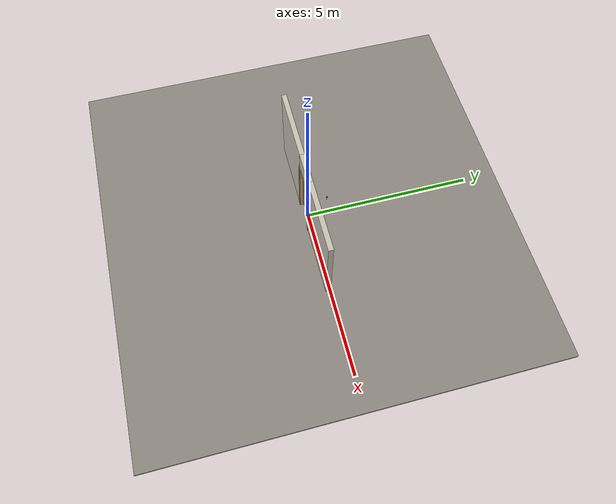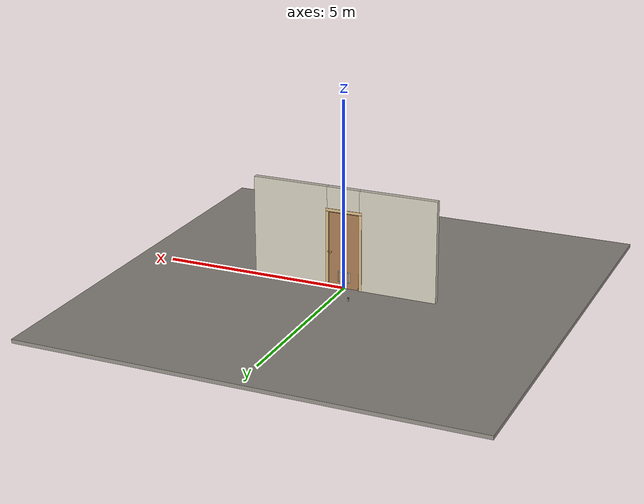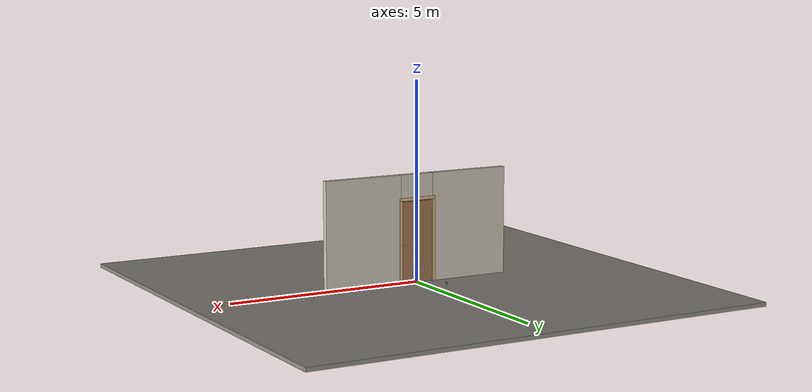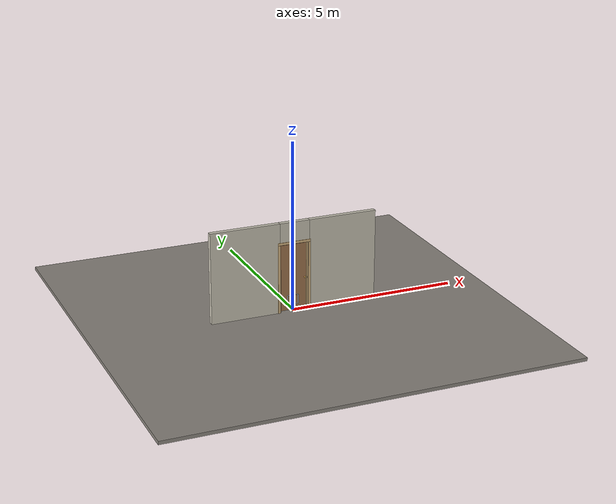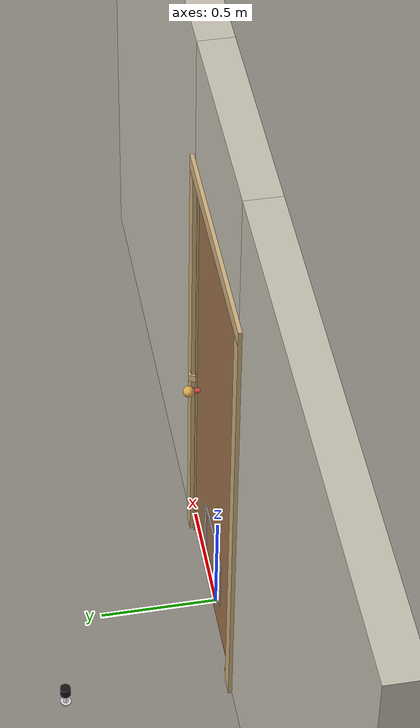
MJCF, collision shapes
<?xml version="1.0" ?>
<mujoco model="db0502_swing_single_full">
  <compiler angle="radian" meshdir="../../hardware" texturedir="../../textures" autolimits="true" inertiafromgeom="false"/>
  <option timestep="0.002" integrator="implicitfast" cone="elliptic" impratio="10" noslip_iterations="3">
    <flag multiccd="enable"/>
  </option>
  <size memory="16M"/>
  <default>
    <geom condim="4" solref="0.005 1" solimp="0.95 0.99 0.001"/>
    <joint solreflimit="0.005 1" solimplimit="0.95 0.99 0.001"/>
    <tendon solreflimit="0.005 1"/>
    <equality solref="0.002 1"/>
  </default>
  <visual>
    <headlight ambient="0.4 0.4 0.4" diffuse="0.7 0.7 0.7" specular="0.2 0.2 0.2"/>
    <quality shadowsize="4096"/>
    <map znear="0.01" zfar="60"/>
  </visual>
  <asset>
    <mesh name="hinge_c20a5829de" file="hinge_c20a5829de.obj"/>
    <mesh name="hinge_jamb_20499e6581" file="hinge_jamb_20499e6581.obj"/>
    <mesh name="knob_d1888f6f03" file="knob_d1888f6f03.obj"/>
    <material name="mat_floor" rgba="0.55 0.53 0.5 1" specular="0.2" shininess="0.15" reflectance="0"/>
    <material name="mat_wall" rgba="0.78 0.76 0.7 1" specular="0.2" shininess="0.1" reflectance="0"/>
    <material name="mat_hinge" rgba="0.55 0.56 0.58 1" specular="0.8" shininess="0.55" reflectance="0.4"/>
    <material name="mat_leaf" rgba="0.62 0.45 0.3 1" specular="0.2" shininess="0.5" reflectance="0"/>
    <material name="mat_op_brass" rgba="0.85 0.66 0.3 1" specular="0.8" shininess="0.75" reflectance="0.4"/>
    <material name="mat_trim" rgba="0.85 0.66 0.3 1" specular="0.8" shininess="0.75" reflectance="0.4"/>
    <material name="mat_bolt" rgba="0.85 0.66 0.3 1" specular="0.8" shininess="0.75" reflectance="0.4"/>
    <material name="mat_frame" rgba="0.82 0.7 0.5 1" specular="0.2" shininess="0.45" reflectance="0"/>
    <material name="mat_vent" rgba="0.8 0.81 0.83 1" specular="0.8" shininess="0.6" reflectance="0.4"/>
    <material name="mat_bumper_stop" rgba="0.08 0.08 0.08 1" specular="0.2" shininess="0.1" reflectance="0"/>
    <material name="mat_stop_base" rgba="0.9 0.9 0.92 1" specular="0.8" shininess="0.9" reflectance="0.4"/>
    <texture name="skybox" type="skybox" builtin="gradient" rgb1="0.6 0.7 0.85" rgb2="0.9 0.92 0.95" width="256" height="256"/>
  </asset>
  <worldbody>
    <light name="sun" pos="1.5 -2.5 4" dir="-0.3 0.5 -0.8" directional="true" diffuse="0.8 0.8 0.8" specular="0.3 0.3 0.3" castshadow="true"/>
    <light name="fill" pos="-1.5 2.5 3" dir="0.3 -0.5 -0.7" directional="true" diffuse="0.35 0.35 0.4" castshadow="false"/>
    <camera name="robot_view" pos="0 -2.590187 1.734312" xyaxes="1 0 0 0 0.26963 0.962964" fovy="52"/>
    <camera name="far_view" pos="0 2.494187 1.734312" xyaxes="-1 0 0 0 -0.26963 0.962964" fovy="52"/>
    <camera name="iso" pos="1.932062 -2.183438 2.141063" xyaxes="0.741536 0.670913 0 -0.242917 0.268487 0.932151" fovy="46"/>
    <camera name="detail_handle" pos="0.526 -0.864 1.245" xyaxes="0.97561 0.219512 0 -0.070934 0.315262 0.94635" fovy="38"/>
    <geom name="floor" type="box" size="6 6 0.05" pos="0 0 -0.05" material="mat_floor" group="0" contype="1" conaffinity="1" friction="0.8 0.005 0.0001" density="2400"/>
    <geom name="wall_left" type="box" size="1.0355 0.0725 1.35" pos="-1.4645 -0.048 1.35" material="mat_wall" group="0" contype="1" conaffinity="1" friction="0.6 0.005 0.0001" density="800"/>
    <geom name="wall_right" type="box" size="1.0205 0.0725 1.35" pos="1.4795 -0.048 1.35" material="mat_wall" group="0" contype="1" conaffinity="1" friction="0.6 0.005 0.0001" density="800"/>
    <geom name="wall_header" type="box" size="0.444 0.0725 0.303" pos="0.015 -0.048 2.397" material="mat_wall" group="0" contype="1" conaffinity="1" friction="0.6 0.005 0.0001" density="800"/>
    <geom name="hinge_0_jamb" type="mesh" mesh="hinge_jamb_20499e6581" pos="-0.407 0.0245 0.259" quat="0 1 0 0" material="mat_hinge" group="1" contype="0" conaffinity="0" density="7850"/>
    <geom name="hinge_1_jamb" type="mesh" mesh="hinge_jamb_20499e6581" pos="-0.407 0.0245 1.0198" quat="0 1 0 0" material="mat_hinge" group="1" contype="0" conaffinity="0" density="7850"/>
    <geom name="hinge_2_jamb" type="mesh" mesh="hinge_jamb_20499e6581" pos="-0.407 0.0245 1.8506" quat="0 1 0 0" material="mat_hinge" group="1" contype="0" conaffinity="0" density="7850"/>
    <geom name="jamb_hinge" type="box" size="0.0095 0.0725 1.0225" pos="-0.4195 -0.048 1.0225" material="mat_frame" group="0" contype="1" conaffinity="1" friction="0.6 0.005 0.0001" density="400"/>
    <geom name="strike_965_wall_n" type="box" size="0.0245 0.056325 0.0167" pos="0.4345 -0.064175 0.965" material="mat_frame" group="0" contype="1" conaffinity="1" friction="0.6 0.005 0.0001" density="400"/>
    <geom name="strike_965_wall_p" type="box" size="0.0245 0.008 0.0167" pos="0.4345 0.01585 0.965" material="mat_frame" group="0" contype="1" conaffinity="1" friction="0.6 0.005 0.0001" density="400"/>
    <geom name="strike_965_ramp" type="box" size="0.0245 0.01649 0.0167" pos="0.439136 0.028673 0.965" quat="0.977148 0 0 -0.212558" material="mat_frame" group="0" contype="1" conaffinity="1" friction="0.12 0.005 0.0001" density="400"/>
    <geom name="strike_965_back" type="box" size="0.01615 0.00785 0.0167" pos="0.44285 0 0.965" material="mat_frame" group="0" contype="1" conaffinity="1" friction="0.6 0.005 0.0001" density="400"/>
    <geom name="jamb_strike_0" type="box" size="0.0245 0.0725 0.47415" pos="0.4345 -0.048 0.47415" material="mat_frame" group="0" contype="1" conaffinity="1" friction="0.6 0.005 0.0001" density="400"/>
    <geom name="jamb_strike_1" type="box" size="0.0245 0.0725 0.53165" pos="0.4345 -0.048 1.51335" material="mat_frame" group="0" contype="1" conaffinity="1" friction="0.6 0.005 0.0001" density="400"/>
    <geom name="jamb_head" type="box" size="0.444 0.0725 0.0095" pos="0.015 -0.048 2.0545" material="mat_frame" group="0" contype="1" conaffinity="1" friction="0.6 0.005 0.0001" density="400"/>
    <geom name="head_stud" type="box" size="0.444 0.0725 0.015" pos="0.015 -0.048 2.079" material="mat_wall" group="0" contype="1" conaffinity="1" friction="0.6 0.005 0.0001" density="500"/>
    <geom name="stop_hinge" type="box" size="0.0055 0.016 1.0225" pos="-0.4045 -0.034 1.0225" material="mat_frame" group="0" contype="1" conaffinity="1" friction="0.6 0.005 0.0001" density="400"/>
    <geom name="stop_strike" type="box" size="0.0055 0.016 1.0225" pos="0.4045 -0.034 1.0225" material="mat_frame" group="0" contype="1" conaffinity="1" friction="0.6 0.005 0.0001" density="400"/>
    <geom name="stop_head" type="box" size="0.41 0.016 0.0055" pos="0 -0.034 2.0395" material="mat_frame" group="0" contype="1" conaffinity="1" friction="0.6 0.005 0.0001" density="400"/>
    <geom name="casing_l_n" type="box" size="0.035 0.008 1.032" pos="-0.459 -0.1285 1.0225" material="mat_frame" group="2" contype="0" conaffinity="0" density="400"/>
    <geom name="casing_r_n" type="box" size="0.035 0.008 1.032" pos="0.459 -0.1285 1.0225" material="mat_frame" group="2" contype="0" conaffinity="0" density="400"/>
    <geom name="casing_h_n" type="box" size="0.494 0.008 0.035" pos="0 -0.1285 2.094" material="mat_frame" group="2" contype="0" conaffinity="0" density="400"/>
    <geom name="casing_l_p" type="box" size="0.035 0.008 1.032" pos="-0.459 0.0325 1.0225" material="mat_frame" group="2" contype="0" conaffinity="0" density="400"/>
    <geom name="casing_r_p" type="box" size="0.035 0.008 1.032" pos="0.459 0.0325 1.0225" material="mat_frame" group="2" contype="0" conaffinity="0" density="400"/>
    <geom name="casing_h_p" type="box" size="0.494 0.008 0.035" pos="0 0.0325 2.094" material="mat_frame" group="2" contype="0" conaffinity="0" density="400"/>
    <geom name="door_stop_base" type="cylinder" size="0.022 0.003" pos="-0.423 0.71555 0.003" material="mat_stop_base" group="0" contype="1" conaffinity="1" friction="0.6 0.005 0.0001" density="7850"/>
    <geom name="door_stop_post" type="cylinder" size="0.012 0.0245" pos="-0.423 0.71555 0.0305" material="mat_stop_base" group="0" contype="1" conaffinity="1" friction="0.6 0.005 0.0001" density="7850"/>
    <geom name="door_stop_bumper" type="cylinder" size="0.022 0.02" pos="-0.423 0.71555 0.075" material="mat_bumper_stop" group="0" contype="1" conaffinity="1" friction="0.6 0.005 0.0001" density="1100"/>
    <site name="approach_point" pos="0 -1.5 0" quat="1 0 0 0" size="0.05" rgba="0.2 0.9 0.2 0.5" group="4"/>
    <site name="goal_point" pos="0 1.5 0" quat="1 0 0 0" size="0.05" rgba="0.2 0.9 0.2 0.5" group="4"/>
    <site name="door_plane_center" pos="0 0 1.0225" quat="1 0 0 0" size="0.02" rgba="0.2 0.9 0.2 0.5" group="4"/>
    <body name="leaf_riser" pos="-0.41 0 0">
      <inertial pos="0.003 0.0245 0.055" mass="0.174012" quat="0.707107 0 0.707107 0" diaginertia="0.000017053 0.00002732 0.00002732"/>
      <joint name="leaf_rise" type="slide" axis="0 0 1" limited="true" range="0 0.0176" damping="1" armature="0.5"/>
      <geom name="leaf_riser_marker" type="cylinder" size="0.014 0.018" pos="0.003 0.0245 0.055" material="mat_hinge" group="1" contype="0" conaffinity="0" density="7850"/>
      <body name="leaf" pos="0 0 0">
        <inertial pos="0.403958 0.000232 1.0028" mass="41.485" quat="0.49979 0.500613 0.499373 -0.500224" diaginertia="2.310537089 14.334887777 16.636340901"/>
        <joint name="leaf_hinge" type="hinge" axis="0 0 1" pos="0.003 0.0245 0" limited="true" range="0 1.570796" damping="0.210326" frictionloss="1.506289" armature="0.02"/>
        <geom name="leaf_slab" type="box" size="0.4065 0.0175 1.0108" pos="0.4095 0 1.0198" material="mat_leaf" group="0" contype="1" conaffinity="1" friction="0.4 0.005 0.0001" density="1"/>
        <geom name="hinge_0" type="mesh" mesh="hinge_c20a5829de" pos="0.003 0.0245 0.259" quat="0 1 0 0" material="mat_hinge" group="1" contype="0" conaffinity="0" density="7850"/>
        <geom name="hinge_1" type="mesh" mesh="hinge_c20a5829de" pos="0.003 0.0245 1.0198" quat="0 1 0 0" material="mat_hinge" group="1" contype="0" conaffinity="0" density="7850"/>
        <geom name="hinge_2" type="mesh" mesh="hinge_c20a5829de" pos="0.003 0.0245 1.8506" quat="0 1 0 0" material="mat_hinge" group="1" contype="0" conaffinity="0" density="7850"/>
        <geom name="leaf_latch_bolt_faceplate" type="box" size="0.0006 0.01235 0.0267" pos="0.8154 0 0.965" material="mat_bolt" group="1" contype="0" conaffinity="0" density="8500"/>
        <geom name="louver_vent_stile_n_l" type="box" size="0.012 0.002 0.137" pos="0.2475 -0.0195 0.314" material="mat_vent" group="2" contype="0" conaffinity="0" density="2700"/>
        <geom name="louver_vent_stile_n_r" type="box" size="0.012 0.002 0.137" pos="0.5715 -0.0195 0.314" material="mat_vent" group="2" contype="0" conaffinity="0" density="2700"/>
        <geom name="louver_vent_rail_n_b" type="box" size="0.15 0.002 0.012" pos="0.4095 -0.0195 0.177" material="mat_vent" group="2" contype="0" conaffinity="0" density="2700"/>
        <geom name="louver_vent_rail_n_t" type="box" size="0.15 0.002 0.012" pos="0.4095 -0.0195 0.451" material="mat_vent" group="2" contype="0" conaffinity="0" density="2700"/>
        <geom name="louver_vent_stile_p_l" type="box" size="0.012 0.002 0.137" pos="0.2475 0.0195 0.314" material="mat_vent" group="2" contype="0" conaffinity="0" density="2700"/>
        <geom name="louver_vent_stile_p_r" type="box" size="0.012 0.002 0.137" pos="0.5715 0.0195 0.314" material="mat_vent" group="2" contype="0" conaffinity="0" density="2700"/>
        <geom name="louver_vent_rail_p_b" type="box" size="0.15 0.002 0.012" pos="0.4095 0.0195 0.177" material="mat_vent" group="2" contype="0" conaffinity="0" density="2700"/>
        <geom name="louver_vent_rail_p_t" type="box" size="0.15 0.002 0.012" pos="0.4095 0.0195 0.451" material="mat_vent" group="2" contype="0" conaffinity="0" density="2700"/>
        <geom name="louver_vent_slat_0" type="box" size="0.15 0.0015 0.015" pos="0.4095 0 0.209833" quat="0.965926 -0.258819 0 0" material="mat_vent" group="2" contype="0" conaffinity="0" density="2700"/>
        <geom name="louver_vent_slat_1" type="box" size="0.15 0.0015 0.015" pos="0.4095 0 0.2515" quat="0.965926 -0.258819 0 0" material="mat_vent" group="2" contype="0" conaffinity="0" density="2700"/>
        <geom name="louver_vent_slat_2" type="box" size="0.15 0.0015 0.015" pos="0.4095 0 0.293167" quat="0.965926 -0.258819 0 0" material="mat_vent" group="2" contype="0" conaffinity="0" density="2700"/>
        <geom name="louver_vent_slat_3" type="box" size="0.15 0.0015 0.015" pos="0.4095 0 0.334833" quat="0.965926 -0.258819 0 0" material="mat_vent" group="2" contype="0" conaffinity="0" density="2700"/>
        <geom name="louver_vent_slat_4" type="box" size="0.15 0.0015 0.015" pos="0.4095 0 0.3765" quat="0.965926 -0.258819 0 0" material="mat_vent" group="2" contype="0" conaffinity="0" density="2700"/>
        <geom name="louver_vent_slat_5" type="box" size="0.15 0.0015 0.015" pos="0.4095 0 0.418167" quat="0.965926 -0.258819 0 0" material="mat_vent" group="2" contype="0" conaffinity="0" density="2700"/>
        <site name="leaf_edge_mid" pos="0.816 0 1.0108" quat="1 0 0 0" size="0.02" rgba="0.2 0.9 0.2 0.5" group="4"/>
        <body name="leaf_handle" pos="0.756 0 0.965">
          <inertial pos="0 0 0" mass="1.143961" quat="-0.5 0.5 -0.5 0.5" diaginertia="0.00031237 0.003706292 0.003706292"/>
          <joint name="leaf_handle_hinge" type="hinge" axis="0 -1 0" limited="true" range="0 0.87" damping="0.143613" frictionloss="0.038" stiffness="0.5" springref="-0.5" armature="0.01"/>
          <geom name="leaf_handle_spindle" type="cylinder" size="0.006 0.0255" pos="0 0 0" quat="0.707107 -0.707107 0 0" material="mat_op_brass" group="1" contype="0" conaffinity="0" density="7850"/>
          <geom name="leaf_handle_knob_n" type="mesh" mesh="knob_d1888f6f03" pos="0 -0.0175 0" quat="0.707107 0.707107 0 0" material="mat_op_brass" group="1" contype="0" conaffinity="0" density="3000"/>
          <geom name="leaf_handle_knob_col_n" type="sphere" size="0.0243" pos="0 -0.064 0" material="mat_op_brass" group="0" contype="1" conaffinity="1" friction="0.9 0.01 0.0001" density="3000"/>
          <geom name="leaf_handle_knob_neck_n" type="cylinder" size="0.011 0.012" pos="0 -0.0295 0" quat="0.707107 -0.707107 0 0" material="mat_op_brass" group="3" contype="1" conaffinity="1" rgba="0.8 0.3 0.3 0.25" friction="0.6 0.005 0.0001" density="3000"/>
          <geom name="leaf_handle_knob_p" type="mesh" mesh="knob_d1888f6f03" pos="0 0.0175 0" quat="-0.707107 0.707107 0 0" material="mat_op_brass" group="1" contype="0" conaffinity="0" density="3000"/>
          <geom name="leaf_handle_knob_col_p" type="sphere" size="0.0243" pos="0 0.064 0" material="mat_op_brass" group="0" contype="1" conaffinity="1" friction="0.9 0.01 0.0001" density="3000"/>
          <geom name="leaf_handle_knob_neck_p" type="cylinder" size="0.011 0.012" pos="0 0.0295 0" quat="0.707107 -0.707107 0 0" material="mat_op_brass" group="3" contype="1" conaffinity="1" rgba="0.8 0.3 0.3 0.25" friction="0.6 0.005 0.0001" density="3000"/>
          <site name="leaf_handle_grip_n" pos="0 -0.064 0" quat="1 0 0 0" size="0.012" rgba="0.2 0.9 0.2 0.5" group="4"/>
          <site name="leaf_handle_grip_p" pos="0 0.064 0" quat="1 0 0 0" size="0.012" rgba="0.2 0.9 0.2 0.5" group="4"/>
        </body>
        <body name="leaf_latch_bolt" pos="0.816 0 0.965">
          <inertial pos="-0.00865 0 0" mass="0.041419" quat="0.92388 -0.382683 0 0" diaginertia="0.000000798 0.000005598 0.000005598"/>
          <joint name="leaf_latch_bolt_slide" type="slide" axis="-1 0 0" limited="true" range="0 0.0127" damping="2" frictionloss="0.3" stiffness="300" springref="-0.008333" armature="0.1"/>
          <geom name="leaf_latch_bolt_capsule" type="capsule" size="0.00635 0.015" pos="-0.00865 0 0" quat="0.707107 0 0.707107 0" material="mat_bolt" group="0" contype="1" conaffinity="1" friction="0.2 0.005 0.0001" density="8500"/>
        </body>
      </body>
    </body>
  </worldbody>
  <tendon>
    <fixed name="leaf_latch_bolt_coupling" limited="true" range="0 10">
      <joint joint="leaf_latch_bolt_slide" coef="1"/>
      <joint joint="leaf_handle_hinge" coef="-0.015679"/>
    </fixed>
  </tendon>
  <equality>
    <joint name="leaf_rise_couple" joint1="leaf_rise" joint2="leaf_hinge" polycoef="0 0.005093 0 0 0" active="true"/>
  </equality>
  <sensor>
    <jointpos name="leaf_hinge_pos" joint="leaf_hinge"/>
    <jointvel name="leaf_hinge_vel" joint="leaf_hinge"/>
    <jointpos name="leaf_handle_hinge_pos" joint="leaf_handle_hinge"/>
    <jointvel name="leaf_handle_hinge_vel" joint="leaf_handle_hinge"/>
    <jointpos name="leaf_latch_bolt_slide_pos" joint="leaf_latch_bolt_slide"/>
    <jointvel name="leaf_latch_bolt_slide_vel" joint="leaf_latch_bolt_slide"/>
  </sensor>
</mujoco>
